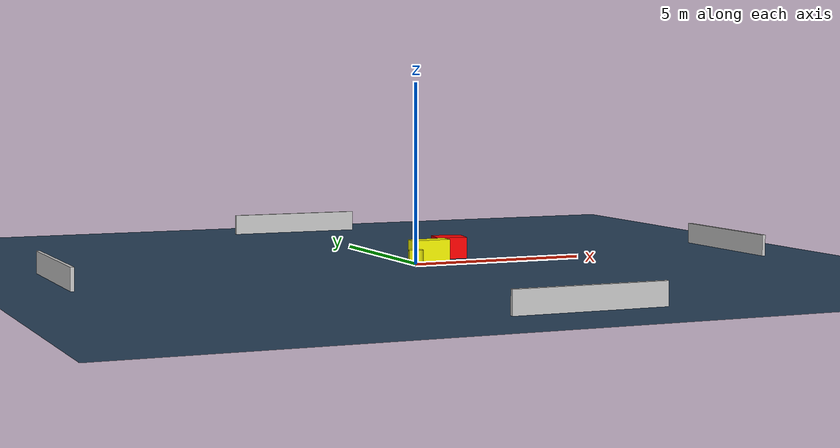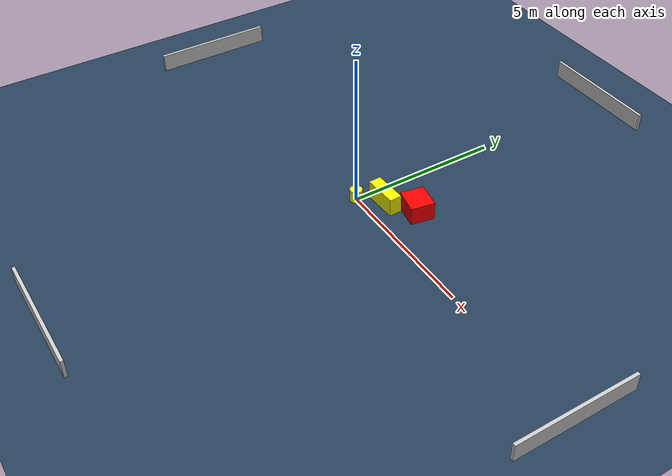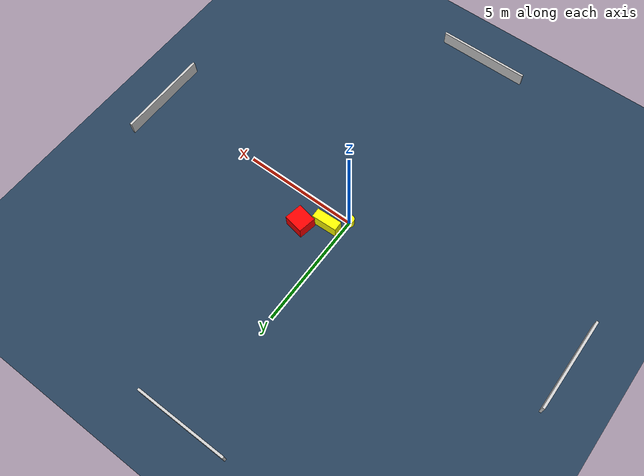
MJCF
<?xml version="1.0" ?>
<mujoco model="generated_environment">
  <option timestep="0.01" integrator="RK4" cone="elliptic"/>
  <default>
    <geom density="1"/>
  </default>
  <asset>
    <texture builtin="gradient" height="3072" name="skybox" rgb1="0.3 0.5 0.7" rgb2="0 0 0" type="skybox" width="512"/>
    <texture builtin="checker" height="300" name="groundplane" rgb1="0.2 0.3 0.4" rgb2="0.1 0.2 0.3" type="2d" width="300"/>
    <material name="groundplane" reflectance="0.2" texrepeat="5 5" texture="groundplane"/>
  </asset>
  <worldbody>
    <light dir="0 0 -1" directional="true" pos="0 0 1.5"/>
    <geom condim="3" friction="0.5 0.005 0.001" material="groundplane" name="floor" pos="0 0 0" size="0 0 0.05" type="plane"/>
    <body name="walls">
      <geom name="wall_1" condim="4" pos="-10.0 0.0 0.3" rgba="0.800000011920929 0.800000011920929 0.800000011920929 1.0" size="0.05 2.0 0.3" type="box"/>
      <geom name="wall_2" condim="4" pos="10.0 0.0 0.3" rgba="0.800000011920929 0.800000011920929 0.800000011920929 1.0" size="0.05 2.0 0.3" type="box"/>
      <geom name="wall_3" condim="4" pos="0.0 -10.0 0.3" rgba="0.800000011920929 0.800000011920929 0.800000011920929 1.0" size="2.0 0.05 0.3" type="box"/>
      <geom name="wall_4" condim="4" pos="0.0 10.0 0.3" rgba="0.800000011920929 0.800000011920929 0.800000011920929 1.0" size="2.0 0.05 0.3" type="box"/>
    </body>
    <body name="robot">
      <joint name="joint_x" type="slide" pos="0 0 0" axis="1 0 0"/>
      <joint name="joint_y" type="slide" pos="0 0 0" axis="0 1 0"/>
      <geom name="robot" type="cylinder" pos="0.0 0.0 0.2" size="0.2 0.2 0.0" mass="5.0" friction="1.0 0.005 0.0001" condim="4" rgba="1.0 1.0 0.0 1.0"/>
    </body>
    <body name="obstacle_1_movable">
      <geom name="obstacle_1_movable" condim="4" pos="0.6616294658350568 0.628700528171017 0.3" euler="0 0 182.1337117118697" friction="0.0 0.005 0.001" rgba="1.0 1.0 0.0 1.0" size="0.5532662566275357 0.206980667978438 0.3" type="box" mass="0.1"/>
      <joint type="free"/>
    </body>
    <body name="obstacle_2_static">
      <geom name="obstacle_2_static" condim="4" pos="1.5408279481839657 1.21188664324621 0.3" euler="0 0 259.5439437169563" friction="0.0 0.005 0.001" rgba="1.0 0.0 0.0 1.0" size="0.3874093916016381 0.42523531216610144 0.3" type="box"/>
    </body>
  </worldbody>
  <actuator>
    <motor name="actuator_x" joint="joint_x" gear="1" ctrlrange="-1 1"/>
    <motor name="actuator_y" joint="joint_y" gear="1" ctrlrange="-1 1"/>
  </actuator>
</mujoco>
